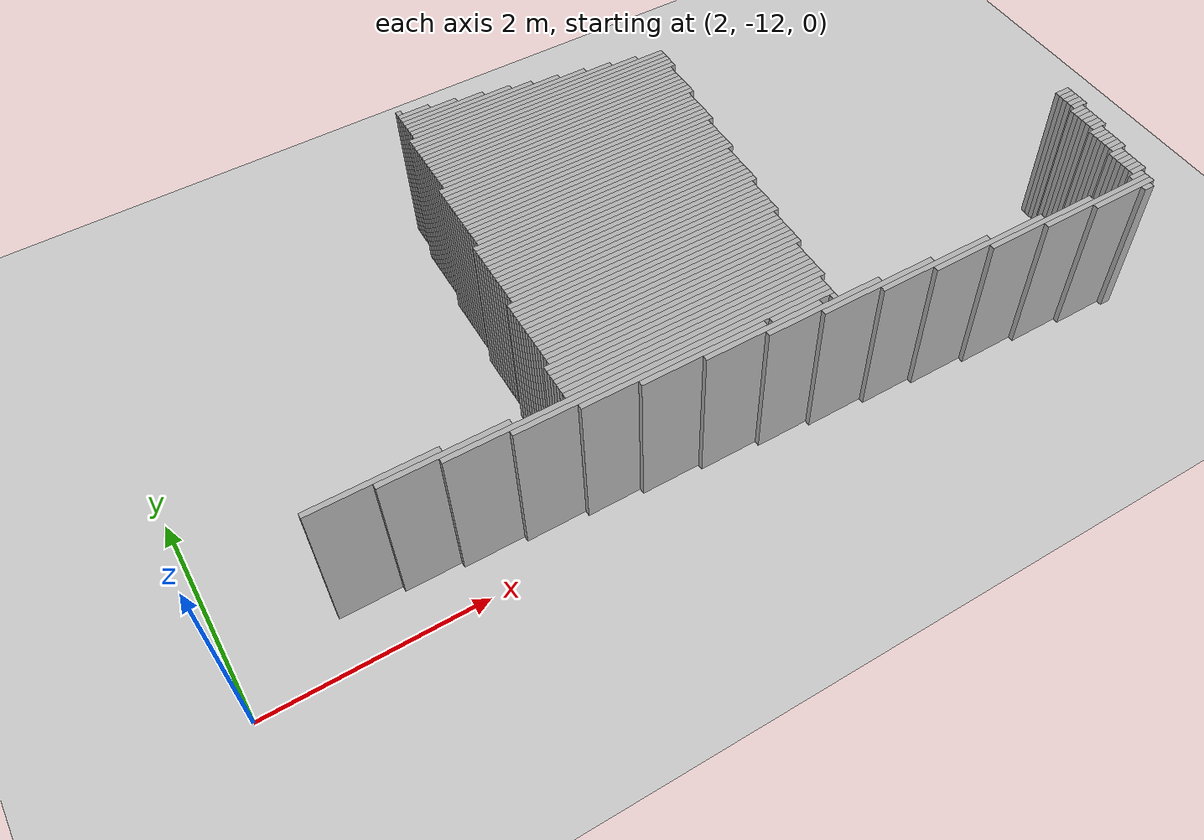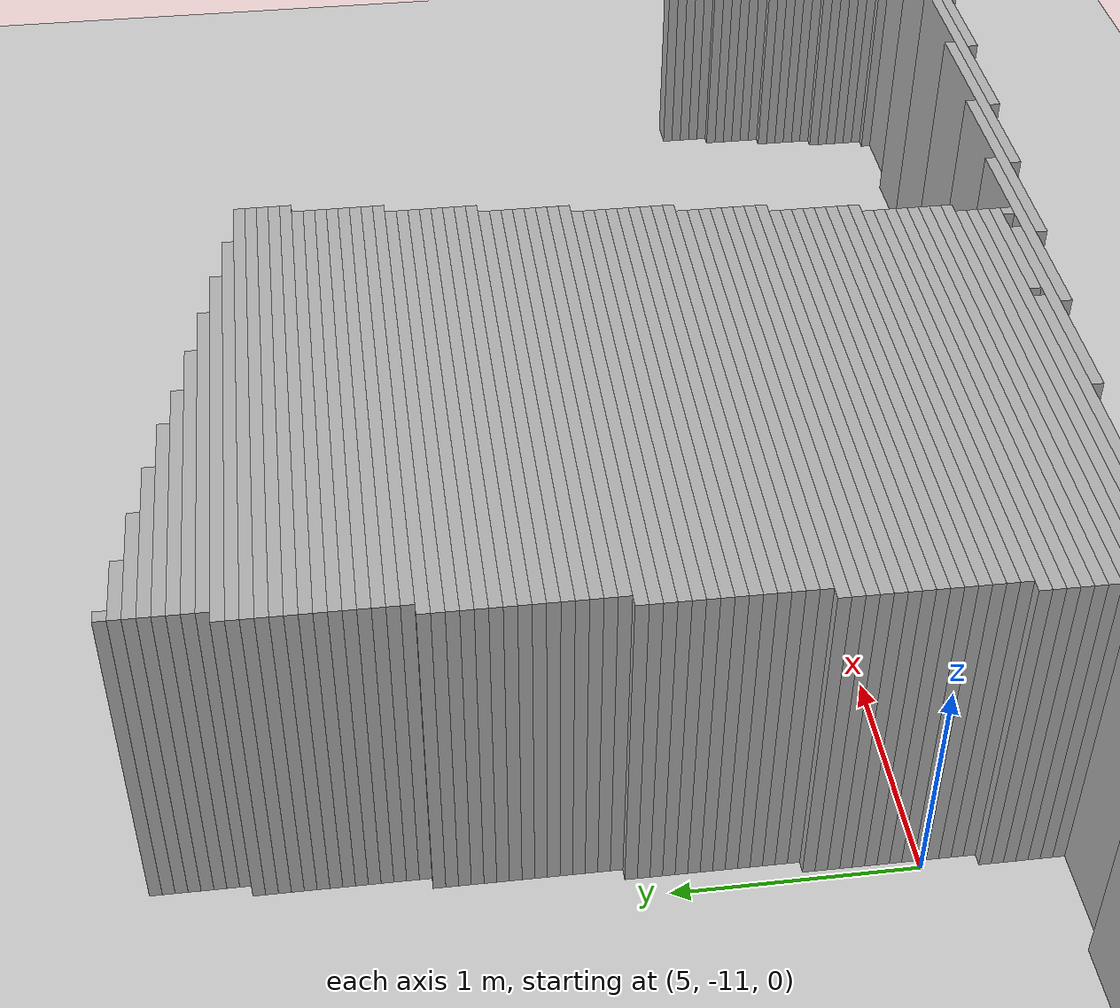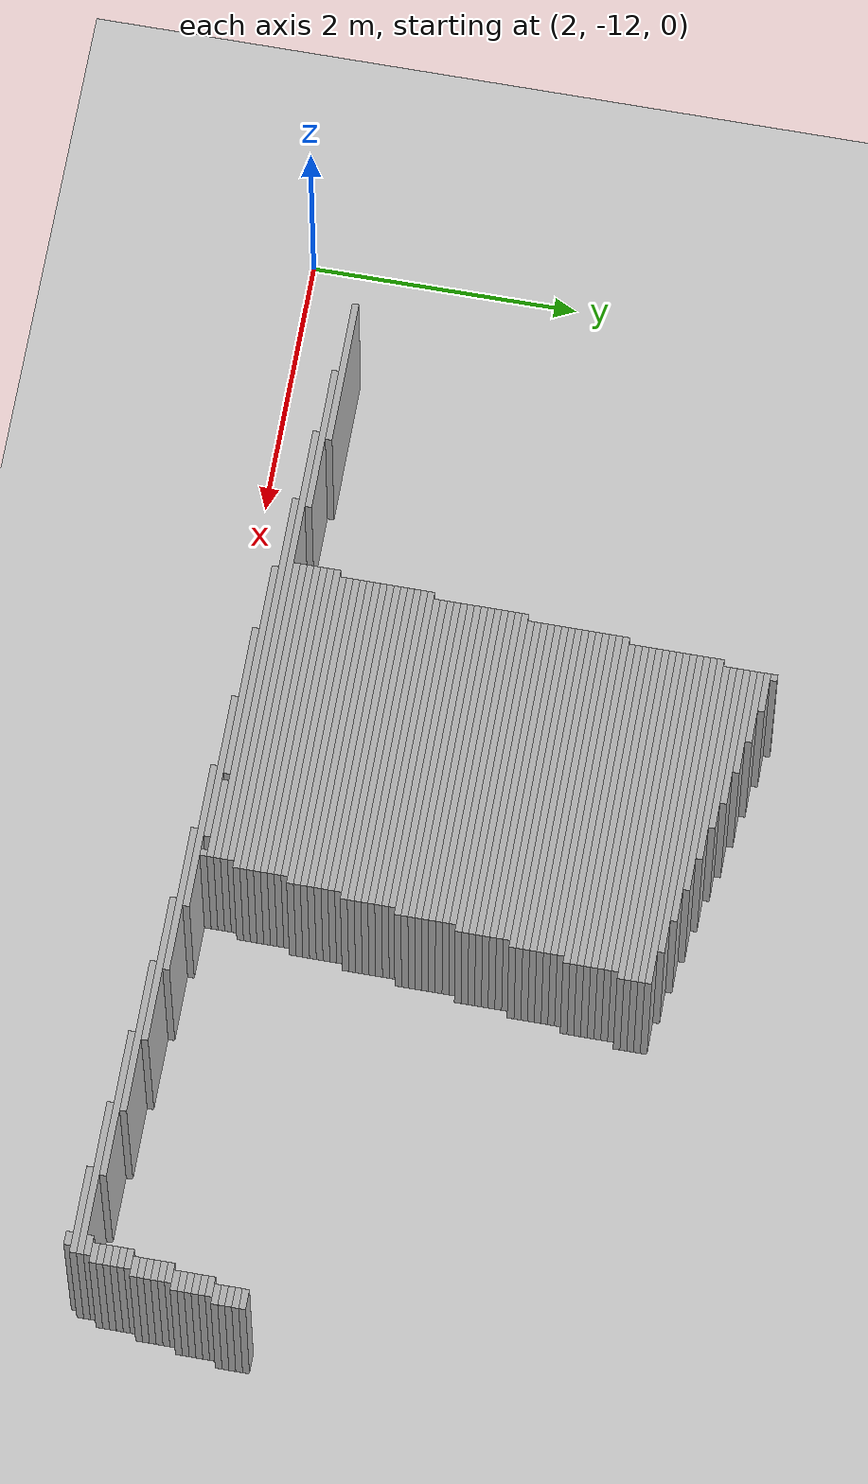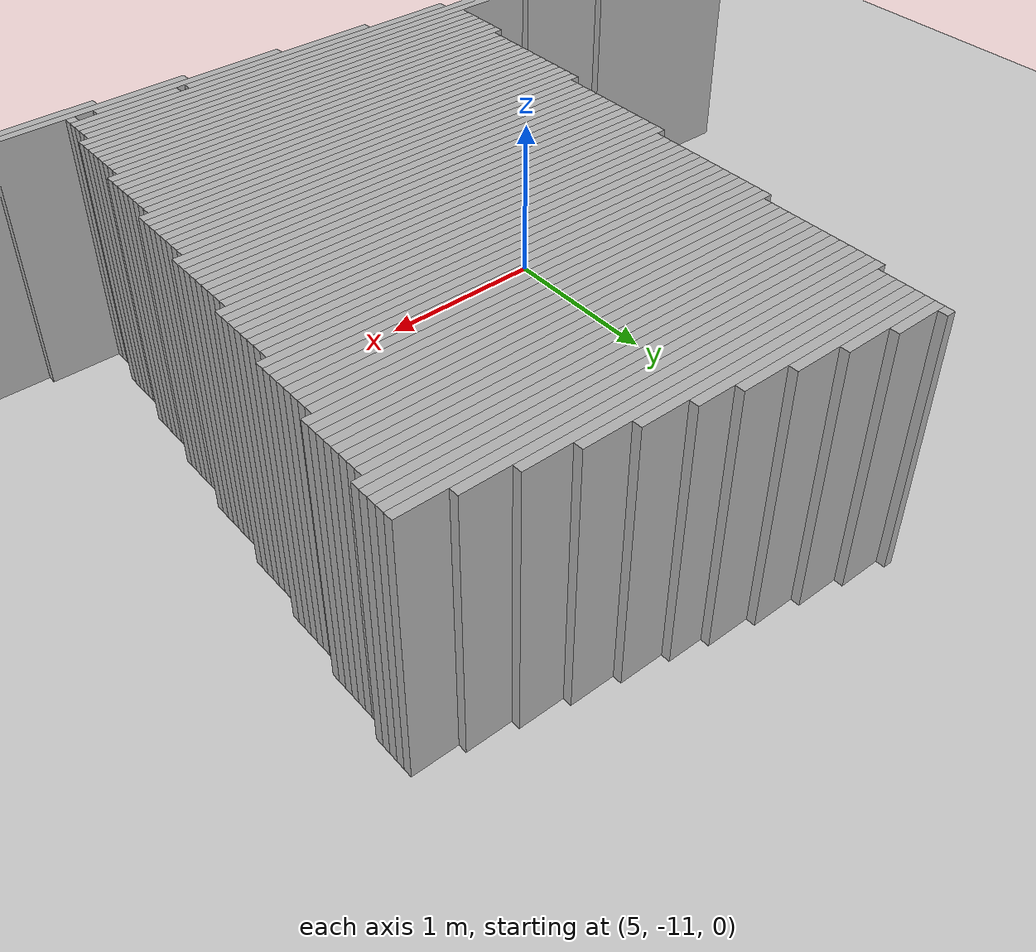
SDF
<sdf version="1.6">
 <world name="df_walled">
  <include><uri>model://sun</uri></include>
  <include><uri>model://ground_plane</uri></include>
  <model name="df_walls">
   <static>true</static>
   <link name="wall_00664">
    <pose>5.2640 -8.0090 0.7500 0 0 0</pose>
    <collision name="col"><geometry><box><size>0.0500 0.0500 1.5000</size></box></geometry></collision>
    <visual name="vis">
     <geometry><box><size>0.0500 0.0500 1.5000</size></box></geometry>
     <material><ambient>0.5 0.5 0.5 1</ambient><diffuse>0.7 0.7 0.7 1</diffuse></material>
    </visual>
   </link>
   <link name="wall_00667">
    <pose>5.3890 -8.0590 0.7500 0 0 0</pose>
    <collision name="col"><geometry><box><size>0.3000 0.0500 1.5000</size></box></geometry></collision>
    <visual name="vis">
     <geometry><box><size>0.3000 0.0500 1.5000</size></box></geometry>
     <material><ambient>0.5 0.5 0.5 1</ambient><diffuse>0.7 0.7 0.7 1</diffuse></material>
    </visual>
   </link>
   <link name="wall_00670">
    <pose>5.5140 -8.1090 0.7500 0 0 0</pose>
    <collision name="col"><geometry><box><size>0.5500 0.0500 1.5000</size></box></geometry></collision>
    <visual name="vis">
     <geometry><box><size>0.5500 0.0500 1.5000</size></box></geometry>
     <material><ambient>0.5 0.5 0.5 1</ambient><diffuse>0.7 0.7 0.7 1</diffuse></material>
    </visual>
   </link>
   <link name="wall_00673">
    <pose>5.6390 -8.1590 0.7500 0 0 0</pose>
    <collision name="col"><geometry><box><size>0.8000 0.0500 1.5000</size></box></geometry></collision>
    <visual name="vis">
     <geometry><box><size>0.8000 0.0500 1.5000</size></box></geometry>
     <material><ambient>0.5 0.5 0.5 1</ambient><diffuse>0.7 0.7 0.7 1</diffuse></material>
    </visual>
   </link>
   <link name="wall_00676">
    <pose>5.7640 -8.2090 0.7500 0 0 0</pose>
    <collision name="col"><geometry><box><size>1.0500 0.0500 1.5000</size></box></geometry></collision>
    <visual name="vis">
     <geometry><box><size>1.0500 0.0500 1.5000</size></box></geometry>
     <material><ambient>0.5 0.5 0.5 1</ambient><diffuse>0.7 0.7 0.7 1</diffuse></material>
    </visual>
   </link>
   <link name="wall_00679">
    <pose>5.8640 -8.2590 0.7500 0 0 0</pose>
    <collision name="col"><geometry><box><size>1.2500 0.0500 1.5000</size></box></geometry></collision>
    <visual name="vis">
     <geometry><box><size>1.2500 0.0500 1.5000</size></box></geometry>
     <material><ambient>0.5 0.5 0.5 1</ambient><diffuse>0.7 0.7 0.7 1</diffuse></material>
    </visual>
   </link>
   <link name="wall_00682">
    <pose>5.9890 -8.3090 0.7500 0 0 0</pose>
    <collision name="col"><geometry><box><size>1.5000 0.0500 1.5000</size></box></geometry></collision>
    <visual name="vis">
     <geometry><box><size>1.5000 0.0500 1.5000</size></box></geometry>
     <material><ambient>0.5 0.5 0.5 1</ambient><diffuse>0.7 0.7 0.7 1</diffuse></material>
    </visual>
   </link>
   <link name="wall_00685">
    <pose>6.1140 -8.3590 0.7500 0 0 0</pose>
    <collision name="col"><geometry><box><size>1.7500 0.0500 1.5000</size></box></geometry></collision>
    <visual name="vis">
     <geometry><box><size>1.7500 0.0500 1.5000</size></box></geometry>
     <material><ambient>0.5 0.5 0.5 1</ambient><diffuse>0.7 0.7 0.7 1</diffuse></material>
    </visual>
   </link>
   <link name="wall_00688">
    <pose>6.2140 -8.4090 0.7500 0 0 0</pose>
    <collision name="col"><geometry><box><size>2.0500 0.0500 1.5000</size></box></geometry></collision>
    <visual name="vis">
     <geometry><box><size>2.0500 0.0500 1.5000</size></box></geometry>
     <material><ambient>0.5 0.5 0.5 1</ambient><diffuse>0.7 0.7 0.7 1</diffuse></material>
    </visual>
   </link>
   <link name="wall_00691">
    <pose>6.3390 -8.4590 0.7500 0 0 0</pose>
    <collision name="col"><geometry><box><size>2.3000 0.0500 1.5000</size></box></geometry></collision>
    <visual name="vis">
     <geometry><box><size>2.3000 0.0500 1.5000</size></box></geometry>
     <material><ambient>0.5 0.5 0.5 1</ambient><diffuse>0.7 0.7 0.7 1</diffuse></material>
    </visual>
   </link>
   <link name="wall_00694">
    <pose>6.4640 -8.5090 0.7500 0 0 0</pose>
    <collision name="col"><geometry><box><size>2.5500 0.0500 1.5000</size></box></geometry></collision>
    <visual name="vis">
     <geometry><box><size>2.5500 0.0500 1.5000</size></box></geometry>
     <material><ambient>0.5 0.5 0.5 1</ambient><diffuse>0.7 0.7 0.7 1</diffuse></material>
    </visual>
   </link>
   <link name="wall_00697">
    <pose>6.4640 -8.5590 0.7500 0 0 0</pose>
    <collision name="col"><geometry><box><size>2.5500 0.0500 1.5000</size></box></geometry></collision>
    <visual name="vis">
     <geometry><box><size>2.5500 0.0500 1.5000</size></box></geometry>
     <material><ambient>0.5 0.5 0.5 1</ambient><diffuse>0.7 0.7 0.7 1</diffuse></material>
    </visual>
   </link>
   <link name="wall_00700">
    <pose>6.4640 -8.6090 0.7500 0 0 0</pose>
    <collision name="col"><geometry><box><size>2.5500 0.0500 1.5000</size></box></geometry></collision>
    <visual name="vis">
     <geometry><box><size>2.5500 0.0500 1.5000</size></box></geometry>
     <material><ambient>0.5 0.5 0.5 1</ambient><diffuse>0.7 0.7 0.7 1</diffuse></material>
    </visual>
   </link>
   <link name="wall_00703">
    <pose>6.4640 -8.6590 0.7500 0 0 0</pose>
    <collision name="col"><geometry><box><size>2.5500 0.0500 1.5000</size></box></geometry></collision>
    <visual name="vis">
     <geometry><box><size>2.5500 0.0500 1.5000</size></box></geometry>
     <material><ambient>0.5 0.5 0.5 1</ambient><diffuse>0.7 0.7 0.7 1</diffuse></material>
    </visual>
   </link>
   <link name="wall_00706">
    <pose>6.4640 -8.7090 0.7500 0 0 0</pose>
    <collision name="col"><geometry><box><size>2.5500 0.0500 1.5000</size></box></geometry></collision>
    <visual name="vis">
     <geometry><box><size>2.5500 0.0500 1.5000</size></box></geometry>
     <material><ambient>0.5 0.5 0.5 1</ambient><diffuse>0.7 0.7 0.7 1</diffuse></material>
    </visual>
   </link>
   <link name="wall_00709">
    <pose>6.4390 -8.7590 0.7500 0 0 0</pose>
    <collision name="col"><geometry><box><size>2.5000 0.0500 1.5000</size></box></geometry></collision>
    <visual name="vis">
     <geometry><box><size>2.5000 0.0500 1.5000</size></box></geometry>
     <material><ambient>0.5 0.5 0.5 1</ambient><diffuse>0.7 0.7 0.7 1</diffuse></material>
    </visual>
   </link>
   <link name="wall_00712">
    <pose>6.4390 -8.8090 0.7500 0 0 0</pose>
    <collision name="col"><geometry><box><size>2.5000 0.0500 1.5000</size></box></geometry></collision>
    <visual name="vis">
     <geometry><box><size>2.5000 0.0500 1.5000</size></box></geometry>
     <material><ambient>0.5 0.5 0.5 1</ambient><diffuse>0.7 0.7 0.7 1</diffuse></material>
    </visual>
   </link>
   <link name="wall_00715">
    <pose>6.4390 -8.8590 0.7500 0 0 0</pose>
    <collision name="col"><geometry><box><size>2.5000 0.0500 1.5000</size></box></geometry></collision>
    <visual name="vis">
     <geometry><box><size>2.5000 0.0500 1.5000</size></box></geometry>
     <material><ambient>0.5 0.5 0.5 1</ambient><diffuse>0.7 0.7 0.7 1</diffuse></material>
    </visual>
   </link>
   <link name="wall_00718">
    <pose>6.4390 -8.9090 0.7500 0 0 0</pose>
    <collision name="col"><geometry><box><size>2.5000 0.0500 1.5000</size></box></geometry></collision>
    <visual name="vis">
     <geometry><box><size>2.5000 0.0500 1.5000</size></box></geometry>
     <material><ambient>0.5 0.5 0.5 1</ambient><diffuse>0.7 0.7 0.7 1</diffuse></material>
    </visual>
   </link>
   <link name="wall_00721">
    <pose>6.4390 -8.9590 0.7500 0 0 0</pose>
    <collision name="col"><geometry><box><size>2.5000 0.0500 1.5000</size></box></geometry></collision>
    <visual name="vis">
     <geometry><box><size>2.5000 0.0500 1.5000</size></box></geometry>
     <material><ambient>0.5 0.5 0.5 1</ambient><diffuse>0.7 0.7 0.7 1</diffuse></material>
    </visual>
   </link>
   <link name="wall_00724">
    <pose>6.4390 -9.0090 0.7500 0 0 0</pose>
    <collision name="col"><geometry><box><size>2.5000 0.0500 1.5000</size></box></geometry></collision>
    <visual name="vis">
     <geometry><box><size>2.5000 0.0500 1.5000</size></box></geometry>
     <material><ambient>0.5 0.5 0.5 1</ambient><diffuse>0.7 0.7 0.7 1</diffuse></material>
    </visual>
   </link>
   <link name="wall_00727">
    <pose>6.4390 -9.0590 0.7500 0 0 0</pose>
    <collision name="col"><geometry><box><size>2.5000 0.0500 1.5000</size></box></geometry></collision>
    <visual name="vis">
     <geometry><box><size>2.5000 0.0500 1.5000</size></box></geometry>
     <material><ambient>0.5 0.5 0.5 1</ambient><diffuse>0.7 0.7 0.7 1</diffuse></material>
    </visual>
   </link>
   <link name="wall_00730">
    <pose>6.4140 -9.1090 0.7500 0 0 0</pose>
    <collision name="col"><geometry><box><size>2.5500 0.0500 1.5000</size></box></geometry></collision>
    <visual name="vis">
     <geometry><box><size>2.5500 0.0500 1.5000</size></box></geometry>
     <material><ambient>0.5 0.5 0.5 1</ambient><diffuse>0.7 0.7 0.7 1</diffuse></material>
    </visual>
   </link>
   <link name="wall_00733">
    <pose>6.3890 -9.1590 0.7500 0 0 0</pose>
    <collision name="col"><geometry><box><size>2.5000 0.0500 1.5000</size></box></geometry></collision>
    <visual name="vis">
     <geometry><box><size>2.5000 0.0500 1.5000</size></box></geometry>
     <material><ambient>0.5 0.5 0.5 1</ambient><diffuse>0.7 0.7 0.7 1</diffuse></material>
    </visual>
   </link>
   <link name="wall_00736">
    <pose>6.3890 -9.2090 0.7500 0 0 0</pose>
    <collision name="col"><geometry><box><size>2.5000 0.0500 1.5000</size></box></geometry></collision>
    <visual name="vis">
     <geometry><box><size>2.5000 0.0500 1.5000</size></box></geometry>
     <material><ambient>0.5 0.5 0.5 1</ambient><diffuse>0.7 0.7 0.7 1</diffuse></material>
    </visual>
   </link>
   <link name="wall_00739">
    <pose>6.3890 -9.2590 0.7500 0 0 0</pose>
    <collision name="col"><geometry><box><size>2.5000 0.0500 1.5000</size></box></geometry></collision>
    <visual name="vis">
     <geometry><box><size>2.5000 0.0500 1.5000</size></box></geometry>
     <material><ambient>0.5 0.5 0.5 1</ambient><diffuse>0.7 0.7 0.7 1</diffuse></material>
    </visual>
   </link>
   <link name="wall_00742">
    <pose>6.3890 -9.3090 0.7500 0 0 0</pose>
    <collision name="col"><geometry><box><size>2.5000 0.0500 1.5000</size></box></geometry></collision>
    <visual name="vis">
     <geometry><box><size>2.5000 0.0500 1.5000</size></box></geometry>
     <material><ambient>0.5 0.5 0.5 1</ambient><diffuse>0.7 0.7 0.7 1</diffuse></material>
    </visual>
   </link>
   <link name="wall_00745">
    <pose>6.3890 -9.3590 0.7500 0 0 0</pose>
    <collision name="col"><geometry><box><size>2.5000 0.0500 1.5000</size></box></geometry></collision>
    <visual name="vis">
     <geometry><box><size>2.5000 0.0500 1.5000</size></box></geometry>
     <material><ambient>0.5 0.5 0.5 1</ambient><diffuse>0.7 0.7 0.7 1</diffuse></material>
    </visual>
   </link>
   <link name="wall_00748">
    <pose>6.3890 -9.4090 0.7500 0 0 0</pose>
    <collision name="col"><geometry><box><size>2.5000 0.0500 1.5000</size></box></geometry></collision>
    <visual name="vis">
     <geometry><box><size>2.5000 0.0500 1.5000</size></box></geometry>
     <material><ambient>0.5 0.5 0.5 1</ambient><diffuse>0.7 0.7 0.7 1</diffuse></material>
    </visual>
   </link>
   <link name="wall_00751">
    <pose>6.3890 -9.4590 0.7500 0 0 0</pose>
    <collision name="col"><geometry><box><size>2.5000 0.0500 1.5000</size></box></geometry></collision>
    <visual name="vis">
     <geometry><box><size>2.5000 0.0500 1.5000</size></box></geometry>
     <material><ambient>0.5 0.5 0.5 1</ambient><diffuse>0.7 0.7 0.7 1</diffuse></material>
    </visual>
   </link>
   <link name="wall_00754">
    <pose>6.3890 -9.5090 0.7500 0 0 0</pose>
    <collision name="col"><geometry><box><size>2.5000 0.0500 1.5000</size></box></geometry></collision>
    <visual name="vis">
     <geometry><box><size>2.5000 0.0500 1.5000</size></box></geometry>
     <material><ambient>0.5 0.5 0.5 1</ambient><diffuse>0.7 0.7 0.7 1</diffuse></material>
    </visual>
   </link>
   <link name="wall_00757">
    <pose>6.3640 -9.5590 0.7500 0 0 0</pose>
    <collision name="col"><geometry><box><size>2.4500 0.0500 1.5000</size></box></geometry></collision>
    <visual name="vis">
     <geometry><box><size>2.4500 0.0500 1.5000</size></box></geometry>
     <material><ambient>0.5 0.5 0.5 1</ambient><diffuse>0.7 0.7 0.7 1</diffuse></material>
    </visual>
   </link>
   <link name="wall_00760">
    <pose>6.3640 -9.6090 0.7500 0 0 0</pose>
    <collision name="col"><geometry><box><size>2.4500 0.0500 1.5000</size></box></geometry></collision>
    <visual name="vis">
     <geometry><box><size>2.4500 0.0500 1.5000</size></box></geometry>
     <material><ambient>0.5 0.5 0.5 1</ambient><diffuse>0.7 0.7 0.7 1</diffuse></material>
    </visual>
   </link>
   <link name="wall_00763">
    <pose>6.3640 -9.6590 0.7500 0 0 0</pose>
    <collision name="col"><geometry><box><size>2.4500 0.0500 1.5000</size></box></geometry></collision>
    <visual name="vis">
     <geometry><box><size>2.4500 0.0500 1.5000</size></box></geometry>
     <material><ambient>0.5 0.5 0.5 1</ambient><diffuse>0.7 0.7 0.7 1</diffuse></material>
    </visual>
   </link>
   <link name="wall_00766">
    <pose>6.3640 -9.7090 0.7500 0 0 0</pose>
    <collision name="col"><geometry><box><size>2.4500 0.0500 1.5000</size></box></geometry></collision>
    <visual name="vis">
     <geometry><box><size>2.4500 0.0500 1.5000</size></box></geometry>
     <material><ambient>0.5 0.5 0.5 1</ambient><diffuse>0.7 0.7 0.7 1</diffuse></material>
    </visual>
   </link>
   <link name="wall_00769">
    <pose>6.3640 -9.7590 0.7500 0 0 0</pose>
    <collision name="col"><geometry><box><size>2.4500 0.0500 1.5000</size></box></geometry></collision>
    <visual name="vis">
     <geometry><box><size>2.4500 0.0500 1.5000</size></box></geometry>
     <material><ambient>0.5 0.5 0.5 1</ambient><diffuse>0.7 0.7 0.7 1</diffuse></material>
    </visual>
   </link>
   <link name="wall_00772">
    <pose>6.3640 -9.8090 0.7500 0 0 0</pose>
    <collision name="col"><geometry><box><size>2.4500 0.0500 1.5000</size></box></geometry></collision>
    <visual name="vis">
     <geometry><box><size>2.4500 0.0500 1.5000</size></box></geometry>
     <material><ambient>0.5 0.5 0.5 1</ambient><diffuse>0.7 0.7 0.7 1</diffuse></material>
    </visual>
   </link>
   <link name="wall_00775">
    <pose>6.3390 -9.8590 0.7500 0 0 0</pose>
    <collision name="col"><geometry><box><size>2.5000 0.0500 1.5000</size></box></geometry></collision>
    <visual name="vis">
     <geometry><box><size>2.5000 0.0500 1.5000</size></box></geometry>
     <material><ambient>0.5 0.5 0.5 1</ambient><diffuse>0.7 0.7 0.7 1</diffuse></material>
    </visual>
   </link>
   <link name="wall_00778">
    <pose>6.3390 -9.9090 0.7500 0 0 0</pose>
    <collision name="col"><geometry><box><size>2.5000 0.0500 1.5000</size></box></geometry></collision>
    <visual name="vis">
     <geometry><box><size>2.5000 0.0500 1.5000</size></box></geometry>
     <material><ambient>0.5 0.5 0.5 1</ambient><diffuse>0.7 0.7 0.7 1</diffuse></material>
    </visual>
   </link>
   <link name="wall_00781">
    <pose>6.3140 -9.9590 0.7500 0 0 0</pose>
    <collision name="col"><geometry><box><size>2.4500 0.0500 1.5000</size></box></geometry></collision>
    <visual name="vis">
     <geometry><box><size>2.4500 0.0500 1.5000</size></box></geometry>
     <material><ambient>0.5 0.5 0.5 1</ambient><diffuse>0.7 0.7 0.7 1</diffuse></material>
    </visual>
   </link>
   <link name="wall_00784">
    <pose>6.3140 -10.0090 0.7500 0 0 0</pose>
    <collision name="col"><geometry><box><size>2.4500 0.0500 1.5000</size></box></geometry></collision>
    <visual name="vis">
     <geometry><box><size>2.4500 0.0500 1.5000</size></box></geometry>
     <material><ambient>0.5 0.5 0.5 1</ambient><diffuse>0.7 0.7 0.7 1</diffuse></material>
    </visual>
   </link>
   <link name="wall_00787">
    <pose>6.3140 -10.0590 0.7500 0 0 0</pose>
    <collision name="col"><geometry><box><size>2.4500 0.0500 1.5000</size></box></geometry></collision>
    <visual name="vis">
     <geometry><box><size>2.4500 0.0500 1.5000</size></box></geometry>
     <material><ambient>0.5 0.5 0.5 1</ambient><diffuse>0.7 0.7 0.7 1</diffuse></material>
    </visual>
   </link>
   <link name="wall_00790">
    <pose>6.3140 -10.1090 0.7500 0 0 0</pose>
    <collision name="col"><geometry><box><size>2.4500 0.0500 1.5000</size></box></geometry></collision>
    <visual name="vis">
     <geometry><box><size>2.4500 0.0500 1.5000</size></box></geometry>
     <material><ambient>0.5 0.5 0.5 1</ambient><diffuse>0.7 0.7 0.7 1</diffuse></material>
    </visual>
   </link>
   <link name="wall_00793">
    <pose>6.3140 -10.1590 0.7500 0 0 0</pose>
    <collision name="col"><geometry><box><size>2.4500 0.0500 1.5000</size></box></geometry></collision>
    <visual name="vis">
     <geometry><box><size>2.4500 0.0500 1.5000</size></box></geometry>
     <material><ambient>0.5 0.5 0.5 1</ambient><diffuse>0.7 0.7 0.7 1</diffuse></material>
    </visual>
   </link>
   <link name="wall_00796">
    <pose>6.3140 -10.2090 0.7500 0 0 0</pose>
    <collision name="col"><geometry><box><size>2.4500 0.0500 1.5000</size></box></geometry></collision>
    <visual name="vis">
     <geometry><box><size>2.4500 0.0500 1.5000</size></box></geometry>
     <material><ambient>0.5 0.5 0.5 1</ambient><diffuse>0.7 0.7 0.7 1</diffuse></material>
    </visual>
   </link>
   <link name="wall_00799">
    <pose>6.3140 -10.2590 0.7500 0 0 0</pose>
    <collision name="col"><geometry><box><size>2.4500 0.0500 1.5000</size></box></geometry></collision>
    <visual name="vis">
     <geometry><box><size>2.4500 0.0500 1.5000</size></box></geometry>
     <material><ambient>0.5 0.5 0.5 1</ambient><diffuse>0.7 0.7 0.7 1</diffuse></material>
    </visual>
   </link>
   <link name="wall_00802">
    <pose>6.3140 -10.3090 0.7500 0 0 0</pose>
    <collision name="col"><geometry><box><size>2.4500 0.0500 1.5000</size></box></geometry></collision>
    <visual name="vis">
     <geometry><box><size>2.4500 0.0500 1.5000</size></box></geometry>
     <material><ambient>0.5 0.5 0.5 1</ambient><diffuse>0.7 0.7 0.7 1</diffuse></material>
    </visual>
   </link>
   <link name="wall_00805">
    <pose>6.3140 -10.3590 0.7500 0 0 0</pose>
    <collision name="col"><geometry><box><size>2.4500 0.0500 1.5000</size></box></geometry></collision>
    <visual name="vis">
     <geometry><box><size>2.4500 0.0500 1.5000</size></box></geometry>
     <material><ambient>0.5 0.5 0.5 1</ambient><diffuse>0.7 0.7 0.7 1</diffuse></material>
    </visual>
   </link>
   <link name="wall_00808">
    <pose>6.2890 -10.4090 0.7500 0 0 0</pose>
    <collision name="col"><geometry><box><size>2.4000 0.0500 1.5000</size></box></geometry></collision>
    <visual name="vis">
     <geometry><box><size>2.4000 0.0500 1.5000</size></box></geometry>
     <material><ambient>0.5 0.5 0.5 1</ambient><diffuse>0.7 0.7 0.7 1</diffuse></material>
    </visual>
   </link>
   <link name="wall_00811">
    <pose>6.2890 -10.4590 0.7500 0 0 0</pose>
    <collision name="col"><geometry><box><size>2.4000 0.0500 1.5000</size></box></geometry></collision>
    <visual name="vis">
     <geometry><box><size>2.4000 0.0500 1.5000</size></box></geometry>
     <material><ambient>0.5 0.5 0.5 1</ambient><diffuse>0.7 0.7 0.7 1</diffuse></material>
    </visual>
   </link>
   <link name="wall_00814">
    <pose>6.2890 -10.5090 0.7500 0 0 0</pose>
    <collision name="col"><geometry><box><size>2.4000 0.0500 1.5000</size></box></geometry></collision>
    <visual name="vis">
     <geometry><box><size>2.4000 0.0500 1.5000</size></box></geometry>
     <material><ambient>0.5 0.5 0.5 1</ambient><diffuse>0.7 0.7 0.7 1</diffuse></material>
    </visual>
   </link>
   <link name="wall_00817">
    <pose>6.2640 -10.5590 0.7500 0 0 0</pose>
    <collision name="col"><geometry><box><size>2.4500 0.0500 1.5000</size></box></geometry></collision>
    <visual name="vis">
     <geometry><box><size>2.4500 0.0500 1.5000</size></box></geometry>
     <material><ambient>0.5 0.5 0.5 1</ambient><diffuse>0.7 0.7 0.7 1</diffuse></material>
    </visual>
   </link>
   <link name="wall_00820">
    <pose>6.2640 -10.6090 0.7500 0 0 0</pose>
    <collision name="col"><geometry><box><size>2.4500 0.0500 1.5000</size></box></geometry></collision>
    <visual name="vis">
     <geometry><box><size>2.4500 0.0500 1.5000</size></box></geometry>
     <material><ambient>0.5 0.5 0.5 1</ambient><diffuse>0.7 0.7 0.7 1</diffuse></material>
    </visual>
   </link>
   <link name="wall_00823">
    <pose>6.2640 -10.6590 0.7500 0 0 0</pose>
    <collision name="col"><geometry><box><size>2.4500 0.0500 1.5000</size></box></geometry></collision>
    <visual name="vis">
     <geometry><box><size>2.4500 0.0500 1.5000</size></box></geometry>
     <material><ambient>0.5 0.5 0.5 1</ambient><diffuse>0.7 0.7 0.7 1</diffuse></material>
    </visual>
   </link>
   <link name="wall_00826">
    <pose>6.2640 -10.7090 0.7500 0 0 0</pose>
    <collision name="col"><geometry><box><size>2.4500 0.0500 1.5000</size></box></geometry></collision>
    <visual name="vis">
     <geometry><box><size>2.4500 0.0500 1.5000</size></box></geometry>
     <material><ambient>0.5 0.5 0.5 1</ambient><diffuse>0.7 0.7 0.7 1</diffuse></material>
    </visual>
   </link>
   <link name="wall_00829">
    <pose>6.2640 -10.7590 0.7500 0 0 0</pose>
    <collision name="col"><geometry><box><size>2.4500 0.0500 1.5000</size></box></geometry></collision>
    <visual name="vis">
     <geometry><box><size>2.4500 0.0500 1.5000</size></box></geometry>
     <material><ambient>0.5 0.5 0.5 1</ambient><diffuse>0.7 0.7 0.7 1</diffuse></material>
    </visual>
   </link>
   <link name="wall_00832">
    <pose>6.2390 -10.8090 0.7500 0 0 0</pose>
    <collision name="col"><geometry><box><size>2.4000 0.0500 1.5000</size></box></geometry></collision>
    <visual name="vis">
     <geometry><box><size>2.4000 0.0500 1.5000</size></box></geometry>
     <material><ambient>0.5 0.5 0.5 1</ambient><diffuse>0.7 0.7 0.7 1</diffuse></material>
    </visual>
   </link>
   <link name="wall_00835">
    <pose>6.2390 -10.8590 0.7500 0 0 0</pose>
    <collision name="col"><geometry><box><size>2.4000 0.0500 1.5000</size></box></geometry></collision>
    <visual name="vis">
     <geometry><box><size>2.4000 0.0500 1.5000</size></box></geometry>
     <material><ambient>0.5 0.5 0.5 1</ambient><diffuse>0.7 0.7 0.7 1</diffuse></material>
    </visual>
   </link>
   <link name="wall_00838">
    <pose>6.2390 -10.9090 0.7500 0 0 0</pose>
    <collision name="col"><geometry><box><size>2.4000 0.0500 1.5000</size></box></geometry></collision>
    <visual name="vis">
     <geometry><box><size>2.4000 0.0500 1.5000</size></box></geometry>
     <material><ambient>0.5 0.5 0.5 1</ambient><diffuse>0.7 0.7 0.7 1</diffuse></material>
    </visual>
   </link>
   <link name="wall_00839">
    <pose>10.5640 -10.9090 0.7500 0 0 0</pose>
    <collision name="col"><geometry><box><size>0.1500 0.0500 1.5000</size></box></geometry></collision>
    <visual name="vis">
     <geometry><box><size>0.1500 0.0500 1.5000</size></box></geometry>
     <material><ambient>0.5 0.5 0.5 1</ambient><diffuse>0.7 0.7 0.7 1</diffuse></material>
    </visual>
   </link>
   <link name="wall_00841">
    <pose>6.2390 -10.9590 0.7500 0 0 0</pose>
    <collision name="col"><geometry><box><size>2.4000 0.0500 1.5000</size></box></geometry></collision>
    <visual name="vis">
     <geometry><box><size>2.4000 0.0500 1.5000</size></box></geometry>
     <material><ambient>0.5 0.5 0.5 1</ambient><diffuse>0.7 0.7 0.7 1</diffuse></material>
    </visual>
   </link>
   <link name="wall_00842">
    <pose>10.5640 -10.9590 0.7500 0 0 0</pose>
    <collision name="col"><geometry><box><size>0.1500 0.0500 1.5000</size></box></geometry></collision>
    <visual name="vis">
     <geometry><box><size>0.1500 0.0500 1.5000</size></box></geometry>
     <material><ambient>0.5 0.5 0.5 1</ambient><diffuse>0.7 0.7 0.7 1</diffuse></material>
    </visual>
   </link>
   <link name="wall_00845">
    <pose>6.2390 -11.0090 0.7500 0 0 0</pose>
    <collision name="col"><geometry><box><size>2.4000 0.0500 1.5000</size></box></geometry></collision>
    <visual name="vis">
     <geometry><box><size>2.4000 0.0500 1.5000</size></box></geometry>
     <material><ambient>0.5 0.5 0.5 1</ambient><diffuse>0.7 0.7 0.7 1</diffuse></material>
    </visual>
   </link>
   <link name="wall_00846">
    <pose>10.5640 -11.0090 0.7500 0 0 0</pose>
    <collision name="col"><geometry><box><size>0.1500 0.0500 1.5000</size></box></geometry></collision>
    <visual name="vis">
     <geometry><box><size>0.1500 0.0500 1.5000</size></box></geometry>
     <material><ambient>0.5 0.5 0.5 1</ambient><diffuse>0.7 0.7 0.7 1</diffuse></material>
    </visual>
   </link>
   <link name="wall_00848">
    <pose>6.2390 -11.0590 0.7500 0 0 0</pose>
    <collision name="col"><geometry><box><size>2.4000 0.0500 1.5000</size></box></geometry></collision>
    <visual name="vis">
     <geometry><box><size>2.4000 0.0500 1.5000</size></box></geometry>
     <material><ambient>0.5 0.5 0.5 1</ambient><diffuse>0.7 0.7 0.7 1</diffuse></material>
    </visual>
   </link>
   <link name="wall_00849">
    <pose>10.5640 -11.0590 0.7500 0 0 0</pose>
    <collision name="col"><geometry><box><size>0.1500 0.0500 1.5000</size></box></geometry></collision>
    <visual name="vis">
     <geometry><box><size>0.1500 0.0500 1.5000</size></box></geometry>
     <material><ambient>0.5 0.5 0.5 1</ambient><diffuse>0.7 0.7 0.7 1</diffuse></material>
    </visual>
   </link>
   <link name="wall_00851">
    <pose>6.2390 -11.1090 0.7500 0 0 0</pose>
    <collision name="col"><geometry><box><size>2.4000 0.0500 1.5000</size></box></geometry></collision>
    <visual name="vis">
     <geometry><box><size>2.4000 0.0500 1.5000</size></box></geometry>
     <material><ambient>0.5 0.5 0.5 1</ambient><diffuse>0.7 0.7 0.7 1</diffuse></material>
    </visual>
   </link>
   <link name="wall_00852">
    <pose>10.5640 -11.1090 0.7500 0 0 0</pose>
    <collision name="col"><geometry><box><size>0.1500 0.0500 1.5000</size></box></geometry></collision>
    <visual name="vis">
     <geometry><box><size>0.1500 0.0500 1.5000</size></box></geometry>
     <material><ambient>0.5 0.5 0.5 1</ambient><diffuse>0.7 0.7 0.7 1</diffuse></material>
    </visual>
   </link>
   <link name="wall_00854">
    <pose>6.2390 -11.1590 0.7500 0 0 0</pose>
    <collision name="col"><geometry><box><size>2.4000 0.0500 1.5000</size></box></geometry></collision>
    <visual name="vis">
     <geometry><box><size>2.4000 0.0500 1.5000</size></box></geometry>
     <material><ambient>0.5 0.5 0.5 1</ambient><diffuse>0.7 0.7 0.7 1</diffuse></material>
    </visual>
   </link>
   <link name="wall_00855">
    <pose>10.5140 -11.1590 0.7500 0 0 0</pose>
    <collision name="col"><geometry><box><size>0.1500 0.0500 1.5000</size></box></geometry></collision>
    <visual name="vis">
     <geometry><box><size>0.1500 0.0500 1.5000</size></box></geometry>
     <material><ambient>0.5 0.5 0.5 1</ambient><diffuse>0.7 0.7 0.7 1</diffuse></material>
    </visual>
   </link>
   <link name="wall_00857">
    <pose>6.2140 -11.2090 0.7500 0 0 0</pose>
    <collision name="col"><geometry><box><size>2.3500 0.0500 1.5000</size></box></geometry></collision>
    <visual name="vis">
     <geometry><box><size>2.3500 0.0500 1.5000</size></box></geometry>
     <material><ambient>0.5 0.5 0.5 1</ambient><diffuse>0.7 0.7 0.7 1</diffuse></material>
    </visual>
   </link>
   <link name="wall_00858">
    <pose>10.5140 -11.2090 0.7500 0 0 0</pose>
    <collision name="col"><geometry><box><size>0.1500 0.0500 1.5000</size></box></geometry></collision>
    <visual name="vis">
     <geometry><box><size>0.1500 0.0500 1.5000</size></box></geometry>
     <material><ambient>0.5 0.5 0.5 1</ambient><diffuse>0.7 0.7 0.7 1</diffuse></material>
    </visual>
   </link>
   <link name="wall_00860">
    <pose>6.1890 -11.2590 0.7500 0 0 0</pose>
    <collision name="col"><geometry><box><size>2.4000 0.0500 1.5000</size></box></geometry></collision>
    <visual name="vis">
     <geometry><box><size>2.4000 0.0500 1.5000</size></box></geometry>
     <material><ambient>0.5 0.5 0.5 1</ambient><diffuse>0.7 0.7 0.7 1</diffuse></material>
    </visual>
   </link>
   <link name="wall_00861">
    <pose>10.5140 -11.2590 0.7500 0 0 0</pose>
    <collision name="col"><geometry><box><size>0.1500 0.0500 1.5000</size></box></geometry></collision>
    <visual name="vis">
     <geometry><box><size>0.1500 0.0500 1.5000</size></box></geometry>
     <material><ambient>0.5 0.5 0.5 1</ambient><diffuse>0.7 0.7 0.7 1</diffuse></material>
    </visual>
   </link>
   <link name="wall_00863">
    <pose>6.1890 -11.3090 0.7500 0 0 0</pose>
    <collision name="col"><geometry><box><size>2.4000 0.0500 1.5000</size></box></geometry></collision>
    <visual name="vis">
     <geometry><box><size>2.4000 0.0500 1.5000</size></box></geometry>
     <material><ambient>0.5 0.5 0.5 1</ambient><diffuse>0.7 0.7 0.7 1</diffuse></material>
    </visual>
   </link>
   <link name="wall_00864">
    <pose>10.5140 -11.3090 0.7500 0 0 0</pose>
    <collision name="col"><geometry><box><size>0.1500 0.0500 1.5000</size></box></geometry></collision>
    <visual name="vis">
     <geometry><box><size>0.1500 0.0500 1.5000</size></box></geometry>
     <material><ambient>0.5 0.5 0.5 1</ambient><diffuse>0.7 0.7 0.7 1</diffuse></material>
    </visual>
   </link>
   <link name="wall_00866">
    <pose>6.1890 -11.3590 0.7500 0 0 0</pose>
    <collision name="col"><geometry><box><size>2.4000 0.0500 1.5000</size></box></geometry></collision>
    <visual name="vis">
     <geometry><box><size>2.4000 0.0500 1.5000</size></box></geometry>
     <material><ambient>0.5 0.5 0.5 1</ambient><diffuse>0.7 0.7 0.7 1</diffuse></material>
    </visual>
   </link>
   <link name="wall_00867">
    <pose>10.5140 -11.3590 0.7500 0 0 0</pose>
    <collision name="col"><geometry><box><size>0.1500 0.0500 1.5000</size></box></geometry></collision>
    <visual name="vis">
     <geometry><box><size>0.1500 0.0500 1.5000</size></box></geometry>
     <material><ambient>0.5 0.5 0.5 1</ambient><diffuse>0.7 0.7 0.7 1</diffuse></material>
    </visual>
   </link>
   <link name="wall_00869">
    <pose>6.1890 -11.4090 0.7500 0 0 0</pose>
    <collision name="col"><geometry><box><size>2.4000 0.0500 1.5000</size></box></geometry></collision>
    <visual name="vis">
     <geometry><box><size>2.4000 0.0500 1.5000</size></box></geometry>
     <material><ambient>0.5 0.5 0.5 1</ambient><diffuse>0.7 0.7 0.7 1</diffuse></material>
    </visual>
   </link>
   <link name="wall_00870">
    <pose>10.5140 -11.4090 0.7500 0 0 0</pose>
    <collision name="col"><geometry><box><size>0.1500 0.0500 1.5000</size></box></geometry></collision>
    <visual name="vis">
     <geometry><box><size>0.1500 0.0500 1.5000</size></box></geometry>
     <material><ambient>0.5 0.5 0.5 1</ambient><diffuse>0.7 0.7 0.7 1</diffuse></material>
    </visual>
   </link>
   <link name="wall_00872">
    <pose>6.1890 -11.4590 0.7500 0 0 0</pose>
    <collision name="col"><geometry><box><size>2.4000 0.0500 1.5000</size></box></geometry></collision>
    <visual name="vis">
     <geometry><box><size>2.4000 0.0500 1.5000</size></box></geometry>
     <material><ambient>0.5 0.5 0.5 1</ambient><diffuse>0.7 0.7 0.7 1</diffuse></material>
    </visual>
   </link>
   <link name="wall_00873">
    <pose>10.4640 -11.4590 0.7500 0 0 0</pose>
    <collision name="col"><geometry><box><size>0.1500 0.0500 1.5000</size></box></geometry></collision>
    <visual name="vis">
     <geometry><box><size>0.1500 0.0500 1.5000</size></box></geometry>
     <material><ambient>0.5 0.5 0.5 1</ambient><diffuse>0.7 0.7 0.7 1</diffuse></material>
    </visual>
   </link>
   <link name="wall_00874">
    <pose>3.4390 -11.5090 0.7500 0 0 0</pose>
    <collision name="col"><geometry><box><size>1.1000 0.0500 1.5000</size></box></geometry></collision>
    <visual name="vis">
     <geometry><box><size>1.1000 0.0500 1.5000</size></box></geometry>
     <material><ambient>0.5 0.5 0.5 1</ambient><diffuse>0.7 0.7 0.7 1</diffuse></material>
    </visual>
   </link>
   <link name="wall_00875">
    <pose>6.1890 -11.5090 0.7500 0 0 0</pose>
    <collision name="col"><geometry><box><size>2.4000 0.0500 1.5000</size></box></geometry></collision>
    <visual name="vis">
     <geometry><box><size>2.4000 0.0500 1.5000</size></box></geometry>
     <material><ambient>0.5 0.5 0.5 1</ambient><diffuse>0.7 0.7 0.7 1</diffuse></material>
    </visual>
   </link>
   <link name="wall_00876">
    <pose>10.4640 -11.5090 0.7500 0 0 0</pose>
    <collision name="col"><geometry><box><size>0.1500 0.0500 1.5000</size></box></geometry></collision>
    <visual name="vis">
     <geometry><box><size>0.1500 0.0500 1.5000</size></box></geometry>
     <material><ambient>0.5 0.5 0.5 1</ambient><diffuse>0.7 0.7 0.7 1</diffuse></material>
    </visual>
   </link>
   <link name="wall_00877">
    <pose>3.9890 -11.5590 0.7500 0 0 0</pose>
    <collision name="col"><geometry><box><size>1.1000 0.0500 1.5000</size></box></geometry></collision>
    <visual name="vis">
     <geometry><box><size>1.1000 0.0500 1.5000</size></box></geometry>
     <material><ambient>0.5 0.5 0.5 1</ambient><diffuse>0.7 0.7 0.7 1</diffuse></material>
    </visual>
   </link>
   <link name="wall_00878">
    <pose>6.1890 -11.5590 0.7500 0 0 0</pose>
    <collision name="col"><geometry><box><size>2.4000 0.0500 1.5000</size></box></geometry></collision>
    <visual name="vis">
     <geometry><box><size>2.4000 0.0500 1.5000</size></box></geometry>
     <material><ambient>0.5 0.5 0.5 1</ambient><diffuse>0.7 0.7 0.7 1</diffuse></material>
    </visual>
   </link>
   <link name="wall_00879">
    <pose>10.4640 -11.5590 0.7500 0 0 0</pose>
    <collision name="col"><geometry><box><size>0.1500 0.0500 1.5000</size></box></geometry></collision>
    <visual name="vis">
     <geometry><box><size>0.1500 0.0500 1.5000</size></box></geometry>
     <material><ambient>0.5 0.5 0.5 1</ambient><diffuse>0.7 0.7 0.7 1</diffuse></material>
    </visual>
   </link>
   <link name="wall_00880">
    <pose>5.6390 -11.6090 0.7500 0 0 0</pose>
    <collision name="col"><geometry><box><size>3.4000 0.0500 1.5000</size></box></geometry></collision>
    <visual name="vis">
     <geometry><box><size>3.4000 0.0500 1.5000</size></box></geometry>
     <material><ambient>0.5 0.5 0.5 1</ambient><diffuse>0.7 0.7 0.7 1</diffuse></material>
    </visual>
   </link>
   <link name="wall_00881">
    <pose>10.4640 -11.6090 0.7500 0 0 0</pose>
    <collision name="col"><geometry><box><size>0.1500 0.0500 1.5000</size></box></geometry></collision>
    <visual name="vis">
     <geometry><box><size>0.1500 0.0500 1.5000</size></box></geometry>
     <material><ambient>0.5 0.5 0.5 1</ambient><diffuse>0.7 0.7 0.7 1</diffuse></material>
    </visual>
   </link>
   <link name="wall_00882">
    <pose>5.9140 -11.6590 0.7500 0 0 0</pose>
    <collision name="col"><geometry><box><size>2.8500 0.0500 1.5000</size></box></geometry></collision>
    <visual name="vis">
     <geometry><box><size>2.8500 0.0500 1.5000</size></box></geometry>
     <material><ambient>0.5 0.5 0.5 1</ambient><diffuse>0.7 0.7 0.7 1</diffuse></material>
    </visual>
   </link>
   <link name="wall_00883">
    <pose>10.4640 -11.6590 0.7500 0 0 0</pose>
    <collision name="col"><geometry><box><size>0.1500 0.0500 1.5000</size></box></geometry></collision>
    <visual name="vis">
     <geometry><box><size>0.1500 0.0500 1.5000</size></box></geometry>
     <material><ambient>0.5 0.5 0.5 1</ambient><diffuse>0.7 0.7 0.7 1</diffuse></material>
    </visual>
   </link>
   <link name="wall_00884">
    <pose>6.1890 -11.7090 0.7500 0 0 0</pose>
    <collision name="col"><geometry><box><size>2.3000 0.0500 1.5000</size></box></geometry></collision>
    <visual name="vis">
     <geometry><box><size>2.3000 0.0500 1.5000</size></box></geometry>
     <material><ambient>0.5 0.5 0.5 1</ambient><diffuse>0.7 0.7 0.7 1</diffuse></material>
    </visual>
   </link>
   <link name="wall_00885">
    <pose>10.4640 -11.7090 0.7500 0 0 0</pose>
    <collision name="col"><geometry><box><size>0.1500 0.0500 1.5000</size></box></geometry></collision>
    <visual name="vis">
     <geometry><box><size>0.1500 0.0500 1.5000</size></box></geometry>
     <material><ambient>0.5 0.5 0.5 1</ambient><diffuse>0.7 0.7 0.7 1</diffuse></material>
    </visual>
   </link>
   <link name="wall_00886">
    <pose>6.1140 -11.7590 0.7500 0 0 0</pose>
    <collision name="col"><geometry><box><size>1.1500 0.0500 1.5000</size></box></geometry></collision>
    <visual name="vis">
     <geometry><box><size>1.1500 0.0500 1.5000</size></box></geometry>
     <material><ambient>0.5 0.5 0.5 1</ambient><diffuse>0.7 0.7 0.7 1</diffuse></material>
    </visual>
   </link>
   <link name="wall_00887">
    <pose>7.0390 -11.7590 0.7500 0 0 0</pose>
    <collision name="col"><geometry><box><size>0.6000 0.0500 1.5000</size></box></geometry></collision>
    <visual name="vis">
     <geometry><box><size>0.6000 0.0500 1.5000</size></box></geometry>
     <material><ambient>0.5 0.5 0.5 1</ambient><diffuse>0.7 0.7 0.7 1</diffuse></material>
    </visual>
   </link>
   <link name="wall_00888">
    <pose>10.4140 -11.7590 0.7500 0 0 0</pose>
    <collision name="col"><geometry><box><size>0.1500 0.0500 1.5000</size></box></geometry></collision>
    <visual name="vis">
     <geometry><box><size>0.1500 0.0500 1.5000</size></box></geometry>
     <material><ambient>0.5 0.5 0.5 1</ambient><diffuse>0.7 0.7 0.7 1</diffuse></material>
    </visual>
   </link>
   <link name="wall_00889">
    <pose>6.6390 -11.8090 0.7500 0 0 0</pose>
    <collision name="col"><geometry><box><size>1.1000 0.0500 1.5000</size></box></geometry></collision>
    <visual name="vis">
     <geometry><box><size>1.1000 0.0500 1.5000</size></box></geometry>
     <material><ambient>0.5 0.5 0.5 1</ambient><diffuse>0.7 0.7 0.7 1</diffuse></material>
    </visual>
   </link>
   <link name="wall_00890">
    <pose>7.3140 -11.8090 0.7500 0 0 0</pose>
    <collision name="col"><geometry><box><size>0.0500 0.0500 1.5000</size></box></geometry></collision>
    <visual name="vis">
     <geometry><box><size>0.0500 0.0500 1.5000</size></box></geometry>
     <material><ambient>0.5 0.5 0.5 1</ambient><diffuse>0.7 0.7 0.7 1</diffuse></material>
    </visual>
   </link>
   <link name="wall_00891">
    <pose>10.4140 -11.8090 0.7500 0 0 0</pose>
    <collision name="col"><geometry><box><size>0.1500 0.0500 1.5000</size></box></geometry></collision>
    <visual name="vis">
     <geometry><box><size>0.1500 0.0500 1.5000</size></box></geometry>
     <material><ambient>0.5 0.5 0.5 1</ambient><diffuse>0.7 0.7 0.7 1</diffuse></material>
    </visual>
   </link>
   <link name="wall_00892">
    <pose>7.1890 -11.8590 0.7500 0 0 0</pose>
    <collision name="col"><geometry><box><size>1.1000 0.0500 1.5000</size></box></geometry></collision>
    <visual name="vis">
     <geometry><box><size>1.1000 0.0500 1.5000</size></box></geometry>
     <material><ambient>0.5 0.5 0.5 1</ambient><diffuse>0.7 0.7 0.7 1</diffuse></material>
    </visual>
   </link>
   <link name="wall_00893">
    <pose>10.4140 -11.8590 0.7500 0 0 0</pose>
    <collision name="col"><geometry><box><size>0.1500 0.0500 1.5000</size></box></geometry></collision>
    <visual name="vis">
     <geometry><box><size>0.1500 0.0500 1.5000</size></box></geometry>
     <material><ambient>0.5 0.5 0.5 1</ambient><diffuse>0.7 0.7 0.7 1</diffuse></material>
    </visual>
   </link>
   <link name="wall_00894">
    <pose>7.6890 -11.9090 0.7500 0 0 0</pose>
    <collision name="col"><geometry><box><size>1.1000 0.0500 1.5000</size></box></geometry></collision>
    <visual name="vis">
     <geometry><box><size>1.1000 0.0500 1.5000</size></box></geometry>
     <material><ambient>0.5 0.5 0.5 1</ambient><diffuse>0.7 0.7 0.7 1</diffuse></material>
    </visual>
   </link>
   <link name="wall_00895">
    <pose>10.4140 -11.9090 0.7500 0 0 0</pose>
    <collision name="col"><geometry><box><size>0.1500 0.0500 1.5000</size></box></geometry></collision>
    <visual name="vis">
     <geometry><box><size>0.1500 0.0500 1.5000</size></box></geometry>
     <material><ambient>0.5 0.5 0.5 1</ambient><diffuse>0.7 0.7 0.7 1</diffuse></material>
    </visual>
   </link>
   <link name="wall_00896">
    <pose>8.2390 -11.9590 0.7500 0 0 0</pose>
    <collision name="col"><geometry><box><size>1.1000 0.0500 1.5000</size></box></geometry></collision>
    <visual name="vis">
     <geometry><box><size>1.1000 0.0500 1.5000</size></box></geometry>
     <material><ambient>0.5 0.5 0.5 1</ambient><diffuse>0.7 0.7 0.7 1</diffuse></material>
    </visual>
   </link>
   <link name="wall_00897">
    <pose>10.4140 -11.9590 0.7500 0 0 0</pose>
    <collision name="col"><geometry><box><size>0.1500 0.0500 1.5000</size></box></geometry></collision>
    <visual name="vis">
     <geometry><box><size>0.1500 0.0500 1.5000</size></box></geometry>
     <material><ambient>0.5 0.5 0.5 1</ambient><diffuse>0.7 0.7 0.7 1</diffuse></material>
    </visual>
   </link>
   <link name="wall_00898">
    <pose>8.7640 -12.0090 0.7500 0 0 0</pose>
    <collision name="col"><geometry><box><size>1.1500 0.0500 1.5000</size></box></geometry></collision>
    <visual name="vis">
     <geometry><box><size>1.1500 0.0500 1.5000</size></box></geometry>
     <material><ambient>0.5 0.5 0.5 1</ambient><diffuse>0.7 0.7 0.7 1</diffuse></material>
    </visual>
   </link>
   <link name="wall_00899">
    <pose>10.4140 -12.0090 0.7500 0 0 0</pose>
    <collision name="col"><geometry><box><size>0.1500 0.0500 1.5000</size></box></geometry></collision>
    <visual name="vis">
     <geometry><box><size>0.1500 0.0500 1.5000</size></box></geometry>
     <material><ambient>0.5 0.5 0.5 1</ambient><diffuse>0.7 0.7 0.7 1</diffuse></material>
    </visual>
   </link>
   <link name="wall_00900">
    <pose>9.2890 -12.0590 0.7500 0 0 0</pose>
    <collision name="col"><geometry><box><size>1.1000 0.0500 1.5000</size></box></geometry></collision>
    <visual name="vis">
     <geometry><box><size>1.1000 0.0500 1.5000</size></box></geometry>
     <material><ambient>0.5 0.5 0.5 1</ambient><diffuse>0.7 0.7 0.7 1</diffuse></material>
    </visual>
   </link>
   <link name="wall_00901">
    <pose>10.3640 -12.0590 0.7500 0 0 0</pose>
    <collision name="col"><geometry><box><size>0.1500 0.0500 1.5000</size></box></geometry></collision>
    <visual name="vis">
     <geometry><box><size>0.1500 0.0500 1.5000</size></box></geometry>
     <material><ambient>0.5 0.5 0.5 1</ambient><diffuse>0.7 0.7 0.7 1</diffuse></material>
    </visual>
   </link>
   <link name="wall_00902">
    <pose>9.8640 -12.1090 0.7500 0 0 0</pose>
    <collision name="col"><geometry><box><size>1.1500 0.0500 1.5000</size></box></geometry></collision>
    <visual name="vis">
     <geometry><box><size>1.1500 0.0500 1.5000</size></box></geometry>
     <material><ambient>0.5 0.5 0.5 1</ambient><diffuse>0.7 0.7 0.7 1</diffuse></material>
    </visual>
   </link>
   <link name="wall_00903">
    <pose>10.1140 -12.1590 0.7500 0 0 0</pose>
    <collision name="col"><geometry><box><size>0.6500 0.0500 1.5000</size></box></geometry></collision>
    <visual name="vis">
     <geometry><box><size>0.6500 0.0500 1.5000</size></box></geometry>
     <material><ambient>0.5 0.5 0.5 1</ambient><diffuse>0.7 0.7 0.7 1</diffuse></material>
    </visual>
   </link>
   <link name="wall_00904">
    <pose>10.3390 -12.2090 0.7500 0 0 0</pose>
    <collision name="col"><geometry><box><size>0.1000 0.0500 1.5000</size></box></geometry></collision>
    <visual name="vis">
     <geometry><box><size>0.1000 0.0500 1.5000</size></box></geometry>
     <material><ambient>0.5 0.5 0.5 1</ambient><diffuse>0.7 0.7 0.7 1</diffuse></material>
    </visual>
   </link>
  </model>
 </world>
</sdf>
